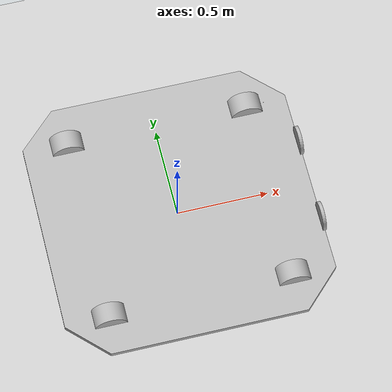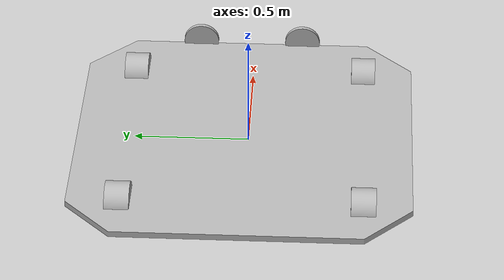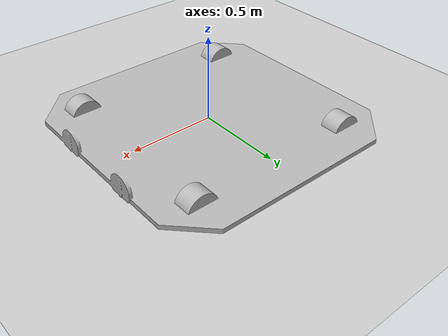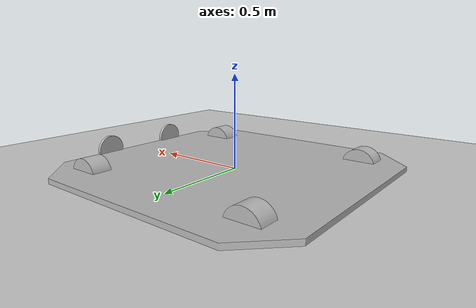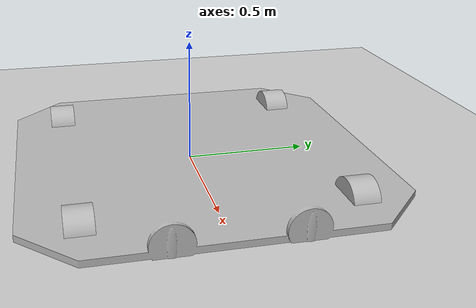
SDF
<?xml version="1.0" ?>
<sdf version="1.5">
    <world name="default">
        <include>
            <uri>model://sun</uri>
        </include>
        <include>
            <uri>model://ground_plane</uri>
        </include>
        <include>
            <uri>model://swerve_robot</uri>
        </include>
    </world>
</sdf>

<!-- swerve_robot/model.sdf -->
<sdf version="1.5">
    <model name="swerve_robot">
        <plugin name="hello_world" filename="libtest.dylib"/>

        <link name="swerve_body">
            <pose>0 0 0 1.5708 0 0</pose>
            <collision name="collision">
                <geometry>
                    <mesh><uri>model://swerve_robot/swerve_body.obj</uri></mesh>
                </geometry>
                <surface>
                    <contact>
                        <collide_bitmask>0x1</collide_bitmask>
                    </contact>
                    <friction>
                        <ode>
                            <mu>100</mu>
                            <mu2>50</mu2>
                        </ode>
                    </friction>
                </surface>
            </collision>
            <visual name="visual">
                <geometry>
                    <mesh><uri>model://swerve_robot/swerve_body.obj</uri></mesh>
                </geometry>
            </visual>
            <inertial>
                <mass>7</mass> <!-- kg -->
                <inertia>
                    <!-- 重心回りの慣性モーメント行列 -->
                    <ixx>0.14729166666</ixx>
                    <ixy>0</ixy>
                    <ixz>0</ixz>
                    <iyy>0.14729166666</iyy>
                    <iyz>0</iyz>
                    <izz>0.29166666666</izz>
                </inertia>
                <pose frame=''>0 0 0 0 -0 0</pose> <!-- 重心位置 -->
            </inertial>
        </link>

        <link name="lf_wheel">
            <pose>0.51 0.53 0 1.5708 0 0</pose>
            <collision name="collision">
                <geometry>
                    <mesh><uri>model://swerve_robot/swerve_wheel.obj</uri></mesh>
                </geometry>
                <surface>
                    <contact>
                        <collide_bitmask>0x2</collide_bitmask>
                    </contact>
                    <friction>
                        <ode>
                            <mu>100</mu>
                            <mu2>50</mu2>
                        </ode>
                    </friction>
                </surface>
            </collision>
            <visual name="visual">
                <geometry>
                    <mesh><uri>model://swerve_robot/swerve_wheel.obj</uri></mesh>
                </geometry>
            </visual>
        </link>

        <link name="rf_wheel">
            <pose>0.51 -0.50 0 1.5708 0 0</pose>
            <collision name="collision">
                <geometry>
                    <mesh><uri>model://swerve_robot/swerve_wheel.obj</uri></mesh>
                </geometry>
                <surface>
                    <contact>
                        <collide_bitmask>0x2</collide_bitmask>
                    </contact>
                    <friction>
                        <ode>
                            <mu>100</mu>
                            <mu2>50</mu2>
                        </ode>
                    </friction>
                </surface>
            </collision>
            <visual name="visual">
                <geometry>
                    <mesh><uri>model://swerve_robot/swerve_wheel.obj</uri></mesh>
                </geometry>
            </visual>
        </link>

        <link name="lb_wheel">
            <pose>-0.49 0.53 0 1.5708 0 0</pose>
            <collision name="collision">
                <geometry>
                    <mesh><uri>model://swerve_robot/swerve_wheel.obj</uri></mesh>
                </geometry>
                <surface>
                    <contact>
                        <collide_bitmask>0x2</collide_bitmask>
                    </contact>
                    <friction>
                        <ode>
                            <mu>100</mu>
                            <mu2>50</mu2>
                        </ode>
                    </friction>
                </surface>
            </collision>
            <visual name="visual">
                <geometry>
                    <mesh><uri>model://swerve_robot/swerve_wheel.obj</uri></mesh>
                </geometry>
            </visual>
        </link>

        <link name="rb_wheel">
            <pose>-0.49 -0.51 0 1.5708 0 0</pose>
            <collision name="collision">
                <geometry>
                    <mesh><uri>model://swerve_robot/swerve_wheel.obj</uri></mesh>
                </geometry>
                <surface>
                    <contact>
                        <collide_bitmask>0x2</collide_bitmask>
                    </contact>
                    <friction>
                        <ode>
                            <mu>100</mu>
                            <mu2>50</mu2>
                        </ode>
                    </friction>
                </surface>
            </collision>
            <visual name="visual">
                <geometry>
                    <mesh><uri>model://swerve_robot/swerve_wheel.obj</uri></mesh>
                </geometry>
            </visual>
        </link>

        <joint name="lf_wheel_joint" type="revolute2">
            <axis>
                <xyz>0 0 1</xyz>
            </axis>
            <axis2>
                <xyz>0 1 0</xyz>
            </axis2>
            <parent>swerve_body</parent>
            <child>lf_wheel</child>
        </joint>

        <joint name="rf_wheel_joint" type="revolute2">
            <axis>
                <xyz>0 0 1</xyz>
            </axis>
            <axis2>
                <xyz>0 1 0</xyz>
            </axis2>
            <parent>swerve_body</parent>
            <child>rf_wheel</child>
        </joint>

        <joint name="lb_wheel_joint" type="revolute2">
            <axis>
                <xyz>0 0 1</xyz>
            </axis>
            <axis2>
                <xyz>0 1 0</xyz>
            </axis2>
            <parent>swerve_body</parent>
            <child>lb_wheel</child>
        </joint>

        <joint name="rb_wheel_joint" type="revolute2">
            <axis>
                <xyz>0 0 1</xyz>
            </axis>
            <axis2>
                <xyz>0 1 0</xyz>
            </axis2>
            <parent>swerve_body</parent>
            <child>rb_wheel</child>
        </joint>

    </model>

</sdf>
